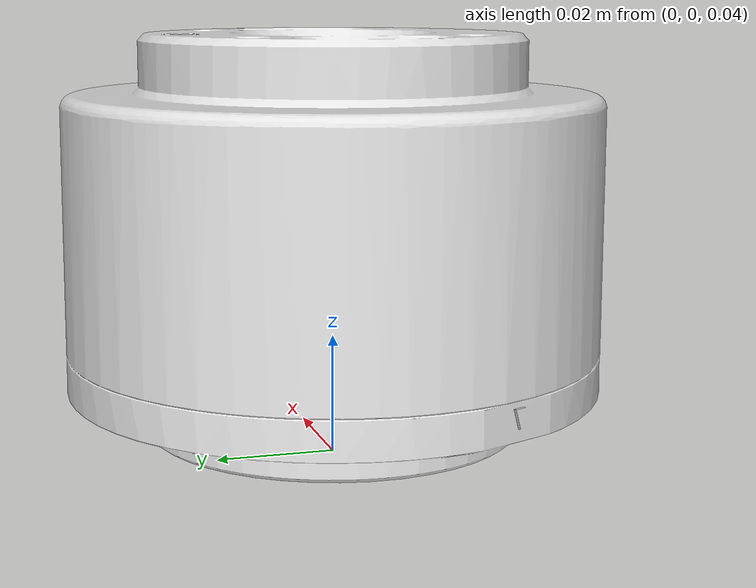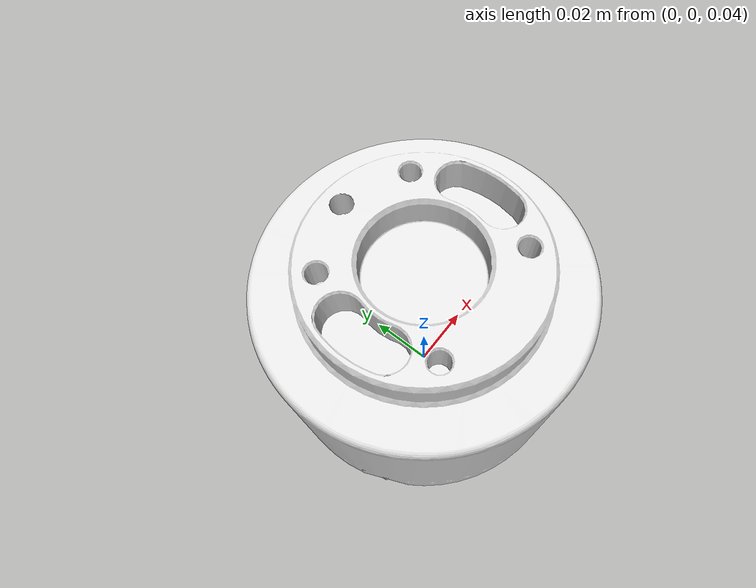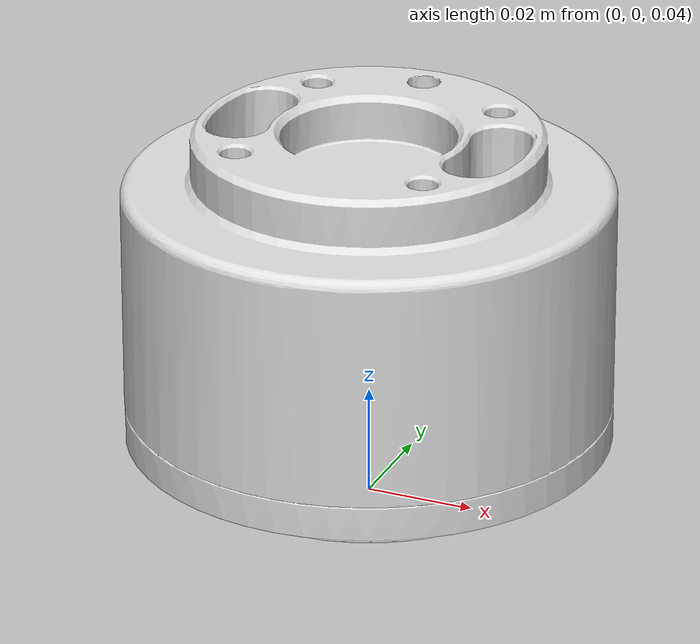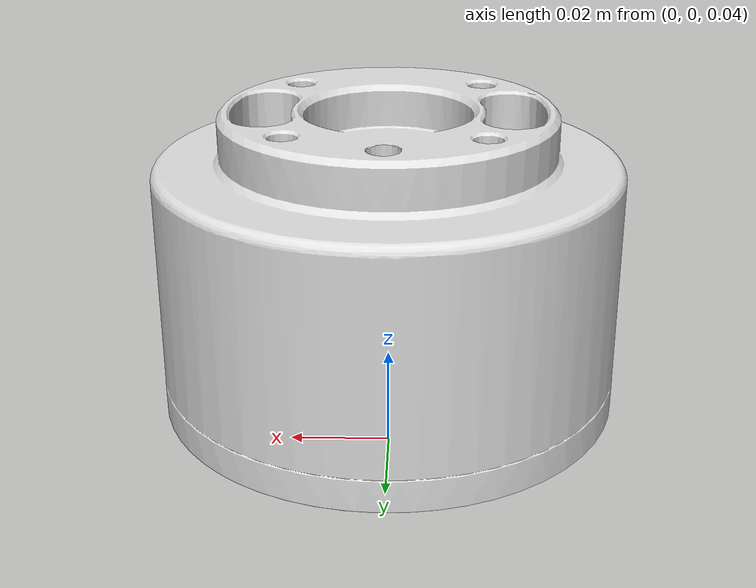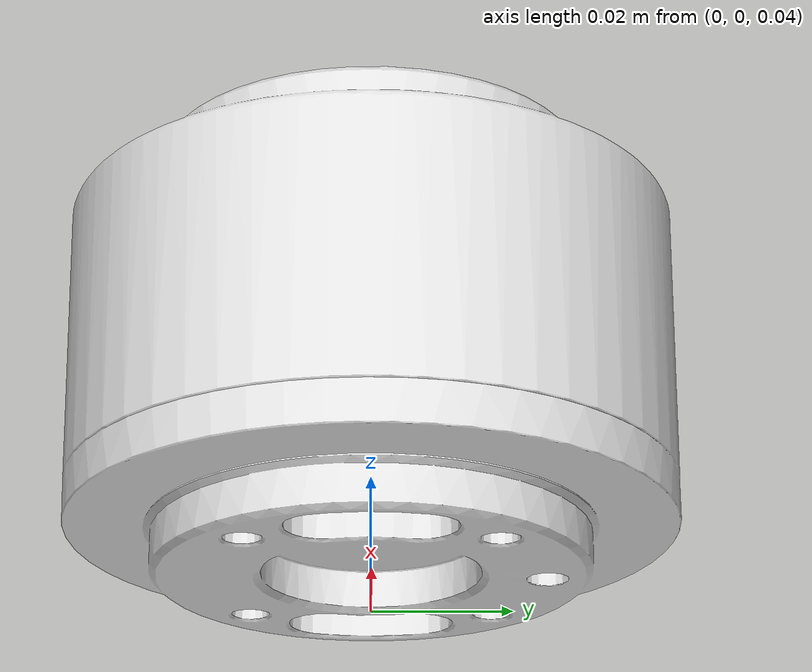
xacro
<?xml version="1.0" encoding="utf-8"?>

<!-- Force Torque Sensor -->
<robot name="ft_sensor" xmlns:xacro="http://www.ros.org/wiki/xacro">
  <xacro:arg name="ft_sensor_file_prefix"  default="package://robot_description/ft_sensor"/>

  <!-- If a parent has NOT defined ft_sensor_file_prefix as a property,
        this sets it from the arg; otherwise the parent's property value stays. -->
  <xacro:property name="ft_sensor_file_prefix"  value="$(arg ft_sensor_file_prefix)"/>

  <link name="ft_sensor_link">
    <visual>
      <geometry>
        <mesh filename="${ft_sensor_file_prefix}/meshes/force_torque_sensor.dae"/>
      </geometry>
    </visual>
    <collision>
      <geometry>
        <mesh filename="${ft_sensor_file_prefix}/meshes/force_torque_sensor.stl"/>
      </geometry>
    </collision>
  </link>
</robot>
